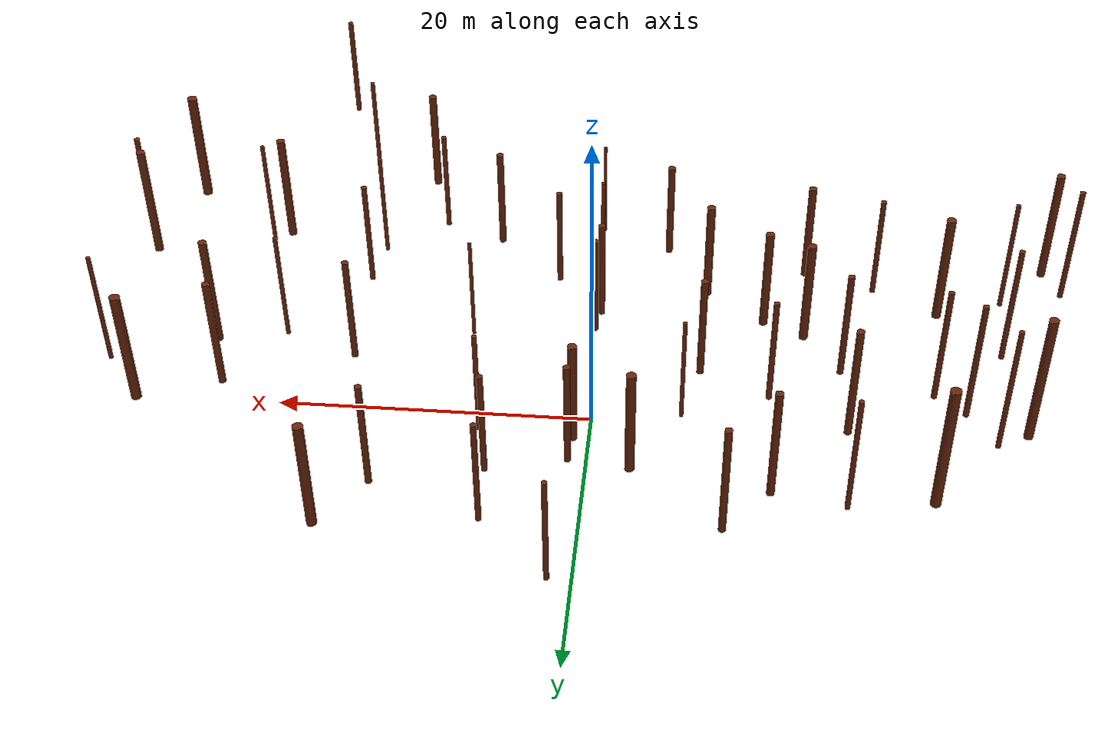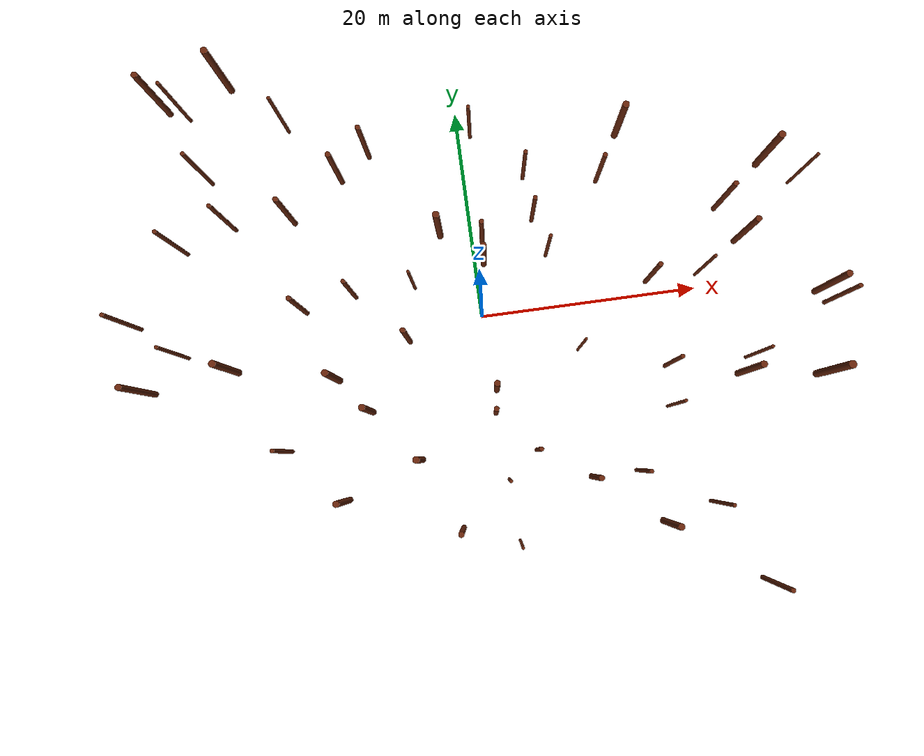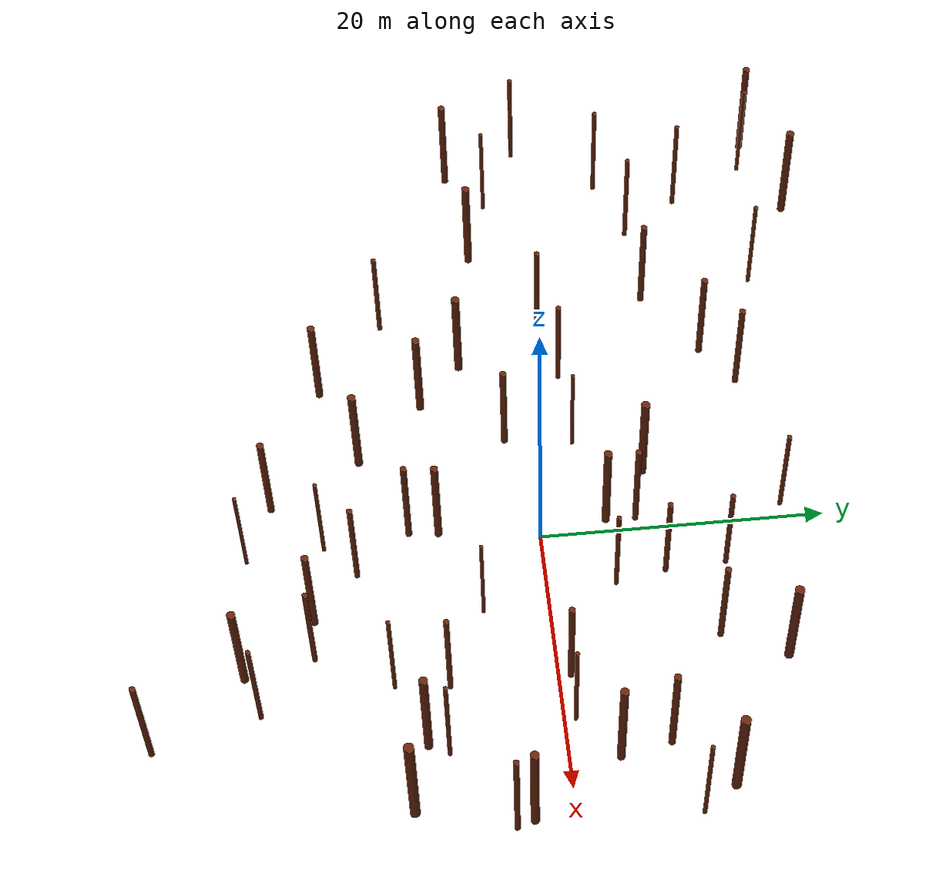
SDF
<sdf version="1.9">
 <world name="terrain_03">
  <plugin filename="gz-sim-physics-system" name="gz::sim::systems::Physics"/>
  <plugin filename="gz-sim-user-commands-system" name="gz::sim::systems::UserCommands"/>
  <plugin filename="gz-sim-scene-broadcaster-system" name="gz::sim::systems::SceneBroadcaster"/>
  <plugin filename="gz-sim-sensors-system" name="gz::sim::systems::Sensors">
   <render_engine>ogre2</render_engine>
  </plugin>
  <plugin filename="gz-sim-imu-system" name="gz::sim::systems::Imu"/>
  <plugin filename="gz-sim-navsat-system" name="gz::sim::systems::NavSat"/>
  <light type="directional" name="sun">
   <pose>0 -7000 7000 0 0 0</pose>
   <diffuse>0.9 0.88 0.82 1</diffuse>
   <specular>0 0 0 1</specular>
   <direction>0.0 0.6 -0.6</direction>
  </light>
  <scene>
   <ambient>0.45 0.48 0.55 1</ambient>
   <grid>false</grid>
   <origin_visual>false</origin_visual>
   <sky><time>10</time><sunrise>6</sunrise><sunset>20</sunset><clouds><speed>12</speed></clouds></sky>
  </scene>
  <physics name="1ms" type="ignored"><dart><collision_detector>bullet</collision_detector></dart></physics>
  <gravity>0 0 -9.8066</gravity>
  <spherical_coordinates>
   <surface_model>EARTH_WGS84</surface_model>
   <latitude_deg>46.50517716653482</latitude_deg>
   <longitude_deg>11.387928661058481</longitude_deg>
   <elevation>547.6000000000004</elevation>
  </spherical_coordinates>
  <model name="tree_0001">
   <static>true</static>
   <pose>0.6646 -20.2379 4.2562 0 0 1.249334</pose>
   <link name="trunk">
    <visual name="trunk_visual">
     <geometry><cylinder><radius>0.1248</radius><length>7.0000</length></cylinder></geometry>
     <material>
      <ambient>0.22 0.08 0.025 1</ambient>
      <diffuse>0.40 0.14 0.04 1</diffuse>
      <specular>0.05 0.05 0.05 1</specular>
     </material>
    </visual>
    <collision name="trunk_collision">
     <geometry><cylinder><radius>0.1248</radius><length>7.0000</length></cylinder></geometry>
    </collision>
   </link>
  </model>
  <model name="tree_0002">
   <static>true</static>
   <pose>12.6927 -19.9428 7.9440 0 0 0.040833</pose>
   <link name="trunk">
    <visual name="trunk_visual">
     <geometry><cylinder><radius>0.2657</radius><length>7.0000</length></cylinder></geometry>
     <material>
      <ambient>0.22 0.08 0.025 1</ambient>
      <diffuse>0.40 0.14 0.04 1</diffuse>
      <specular>0.05 0.05 0.05 1</specular>
     </material>
    </visual>
    <collision name="trunk_collision">
     <geometry><cylinder><radius>0.2657</radius><length>7.0000</length></cylinder></geometry>
    </collision>
   </link>
  </model>
  <model name="tree_0003">
   <static>true</static>
   <pose>19.2636 -25.0650 10.7334 0 0 0.976907</pose>
   <link name="trunk">
    <visual name="trunk_visual">
     <geometry><cylinder><radius>0.1812</radius><length>7.0000</length></cylinder></geometry>
     <material>
      <ambient>0.22 0.08 0.025 1</ambient>
      <diffuse>0.40 0.14 0.04 1</diffuse>
      <specular>0.05 0.05 0.05 1</specular>
     </material>
    </visual>
    <collision name="trunk_collision">
     <geometry><cylinder><radius>0.1812</radius><length>7.0000</length></cylinder></geometry>
    </collision>
   </link>
  </model>
  <model name="tree_0004">
   <static>true</static>
   <pose>-13.6316 -14.8130 5.0450 0 0 3.886274</pose>
   <link name="trunk">
    <visual name="trunk_visual">
     <geometry><cylinder><radius>0.2693</radius><length>7.0000</length></cylinder></geometry>
     <material>
      <ambient>0.22 0.08 0.025 1</ambient>
      <diffuse>0.40 0.14 0.04 1</diffuse>
      <specular>0.05 0.05 0.05 1</specular>
     </material>
    </visual>
    <collision name="trunk_collision">
     <geometry><cylinder><radius>0.2693</radius><length>7.0000</length></cylinder></geometry>
    </collision>
   </link>
  </model>
  <model name="tree_0005">
   <static>true</static>
   <pose>-4.1053 -18.5694 3.8730 0 0 0.287923</pose>
   <link name="trunk">
    <visual name="trunk_visual">
     <geometry><cylinder><radius>0.2468</radius><length>7.0000</length></cylinder></geometry>
     <material>
      <ambient>0.22 0.08 0.025 1</ambient>
      <diffuse>0.40 0.14 0.04 1</diffuse>
      <specular>0.05 0.05 0.05 1</specular>
     </material>
    </visual>
    <collision name="trunk_collision">
     <geometry><cylinder><radius>0.2468</radius><length>7.0000</length></cylinder></geometry>
    </collision>
   </link>
  </model>
  <model name="tree_0006">
   <static>true</static>
   <pose>0.4288 -14.9277 4.6783 0 0 1.462668</pose>
   <link name="trunk">
    <visual name="trunk_visual">
     <geometry><cylinder><radius>0.1344</radius><length>7.0000</length></cylinder></geometry>
     <material>
      <ambient>0.22 0.08 0.025 1</ambient>
      <diffuse>0.40 0.14 0.04 1</diffuse>
      <specular>0.05 0.05 0.05 1</specular>
     </material>
    </visual>
    <collision name="trunk_collision">
     <geometry><cylinder><radius>0.1344</radius><length>7.0000</length></cylinder></geometry>
    </collision>
   </link>
  </model>
  <model name="tree_0007">
   <static>true</static>
   <pose>7.4999 -15.6080 6.1229 0 0 2.292308</pose>
   <link name="trunk">
    <visual name="trunk_visual">
     <geometry><cylinder><radius>0.2344</radius><length>7.0000</length></cylinder></geometry>
     <material>
      <ambient>0.22 0.08 0.025 1</ambient>
      <diffuse>0.40 0.14 0.04 1</diffuse>
      <specular>0.05 0.05 0.05 1</specular>
     </material>
    </visual>
    <collision name="trunk_collision">
     <geometry><cylinder><radius>0.2344</radius><length>7.0000</length></cylinder></geometry>
    </collision>
   </link>
  </model>
  <model name="tree_0008">
   <static>true</static>
   <pose>11.2601 -15.5663 7.3431 0 0 5.885174</pose>
   <link name="trunk">
    <visual name="trunk_visual">
     <geometry><cylinder><radius>0.1681</radius><length>7.0000</length></cylinder></geometry>
     <material>
      <ambient>0.22 0.08 0.025 1</ambient>
      <diffuse>0.40 0.14 0.04 1</diffuse>
      <specular>0.05 0.05 0.05 1</specular>
     </material>
    </visual>
    <collision name="trunk_collision">
     <geometry><cylinder><radius>0.1681</radius><length>7.0000</length></cylinder></geometry>
    </collision>
   </link>
  </model>
  <model name="tree_0009">
   <static>true</static>
   <pose>16.5614 -18.7627 9.4497 0 0 4.581239</pose>
   <link name="trunk">
    <visual name="trunk_visual">
     <geometry><cylinder><radius>0.1508</radius><length>7.0000</length></cylinder></geometry>
     <material>
      <ambient>0.22 0.08 0.025 1</ambient>
      <diffuse>0.40 0.14 0.04 1</diffuse>
      <specular>0.05 0.05 0.05 1</specular>
     </material>
    </visual>
    <collision name="trunk_collision">
     <geometry><cylinder><radius>0.1508</radius><length>7.0000</length></cylinder></geometry>
    </collision>
   </link>
  </model>
  <model name="tree_0010">
   <static>true</static>
   <pose>-17.7329 -10.0585 7.2817 0 0 1.682266</pose>
   <link name="trunk">
    <visual name="trunk_visual">
     <geometry><cylinder><radius>0.1768</radius><length>7.0000</length></cylinder></geometry>
     <material>
      <ambient>0.22 0.08 0.025 1</ambient>
      <diffuse>0.40 0.14 0.04 1</diffuse>
      <specular>0.05 0.05 0.05 1</specular>
     </material>
    </visual>
    <collision name="trunk_collision">
     <geometry><cylinder><radius>0.1768</radius><length>7.0000</length></cylinder></geometry>
    </collision>
   </link>
  </model>
  <model name="tree_0011">
   <static>true</static>
   <pose>-10.6384 -7.5650 6.1093 0 0 1.977179</pose>
   <link name="trunk">
    <visual name="trunk_visual">
     <geometry><cylinder><radius>0.2777</radius><length>7.0000</length></cylinder></geometry>
     <material>
      <ambient>0.22 0.08 0.025 1</ambient>
      <diffuse>0.40 0.14 0.04 1</diffuse>
      <specular>0.05 0.05 0.05 1</specular>
     </material>
    </visual>
    <collision name="trunk_collision">
     <geometry><cylinder><radius>0.2777</radius><length>7.0000</length></cylinder></geometry>
    </collision>
   </link>
  </model>
  <model name="tree_0012">
   <static>true</static>
   <pose>-6.9236 -12.2282 4.8585 0 0 2.883051</pose>
   <link name="trunk">
    <visual name="trunk_visual">
     <geometry><cylinder><radius>0.2846</radius><length>7.0000</length></cylinder></geometry>
     <material>
      <ambient>0.22 0.08 0.025 1</ambient>
      <diffuse>0.40 0.14 0.04 1</diffuse>
      <specular>0.05 0.05 0.05 1</specular>
     </material>
    </visual>
    <collision name="trunk_collision">
     <geometry><cylinder><radius>0.2846</radius><length>7.0000</length></cylinder></geometry>
    </collision>
   </link>
  </model>
  <model name="tree_0013">
   <static>true</static>
   <pose>0.0595 -9.0664 5.1618 0 0 1.650854</pose>
   <link name="trunk">
    <visual name="trunk_visual">
     <geometry><cylinder><radius>0.2210</radius><length>7.0000</length></cylinder></geometry>
     <material>
      <ambient>0.22 0.08 0.025 1</ambient>
      <diffuse>0.40 0.14 0.04 1</diffuse>
      <specular>0.05 0.05 0.05 1</specular>
     </material>
    </visual>
    <collision name="trunk_collision">
     <geometry><cylinder><radius>0.2210</radius><length>7.0000</length></cylinder></geometry>
    </collision>
   </link>
  </model>
  <model name="tree_0014">
   <static>true</static>
   <pose>3.2000 -12.7300 5.1151 0 0 1.378033</pose>
   <link name="trunk">
    <visual name="trunk_visual">
     <geometry><cylinder><radius>0.1919</radius><length>7.0000</length></cylinder></geometry>
     <material>
      <ambient>0.22 0.08 0.025 1</ambient>
      <diffuse>0.40 0.14 0.04 1</diffuse>
      <specular>0.05 0.05 0.05 1</specular>
     </material>
    </visual>
    <collision name="trunk_collision">
     <geometry><cylinder><radius>0.1919</radius><length>7.0000</length></cylinder></geometry>
    </collision>
   </link>
  </model>
  <model name="tree_0015">
   <static>true</static>
   <pose>14.5870 -10.6019 8.4388 0 0 0.296041</pose>
   <link name="trunk">
    <visual name="trunk_visual">
     <geometry><cylinder><radius>0.1364</radius><length>7.0000</length></cylinder></geometry>
     <material>
      <ambient>0.22 0.08 0.025 1</ambient>
      <diffuse>0.40 0.14 0.04 1</diffuse>
      <specular>0.05 0.05 0.05 1</specular>
     </material>
    </visual>
    <collision name="trunk_collision">
     <geometry><cylinder><radius>0.1364</radius><length>7.0000</length></cylinder></geometry>
    </collision>
   </link>
  </model>
  <model name="tree_0016">
   <static>true</static>
   <pose>20.3695 -8.7783 10.6182 0 0 2.652509</pose>
   <link name="trunk">
    <visual name="trunk_visual">
     <geometry><cylinder><radius>0.2626</radius><length>7.0000</length></cylinder></geometry>
     <material>
      <ambient>0.22 0.08 0.025 1</ambient>
      <diffuse>0.40 0.14 0.04 1</diffuse>
      <specular>0.05 0.05 0.05 1</specular>
     </material>
    </visual>
    <collision name="trunk_collision">
     <geometry><cylinder><radius>0.2626</radius><length>7.0000</length></cylinder></geometry>
    </collision>
   </link>
  </model>
  <model name="tree_0017">
   <static>true</static>
   <pose>26.0068 -9.8029 12.8195 0 0 3.324523</pose>
   <link name="trunk">
    <visual name="trunk_visual">
     <geometry><cylinder><radius>0.2993</radius><length>7.0000</length></cylinder></geometry>
     <material>
      <ambient>0.22 0.08 0.025 1</ambient>
      <diffuse>0.40 0.14 0.04 1</diffuse>
      <specular>0.05 0.05 0.05 1</specular>
     </material>
    </visual>
    <collision name="trunk_collision">
     <geometry><cylinder><radius>0.2993</radius><length>7.0000</length></cylinder></geometry>
    </collision>
   </link>
  </model>
  <model name="tree_0018">
   <static>true</static>
   <pose>-26.8000 -4.3348 13.2286 0 0 3.373884</pose>
   <link name="trunk">
    <visual name="trunk_visual">
     <geometry><cylinder><radius>0.2427</radius><length>7.0000</length></cylinder></geometry>
     <material>
      <ambient>0.22 0.08 0.025 1</ambient>
      <diffuse>0.40 0.14 0.04 1</diffuse>
      <specular>0.05 0.05 0.05 1</specular>
     </material>
    </visual>
    <collision name="trunk_collision">
     <geometry><cylinder><radius>0.2427</radius><length>7.0000</length></cylinder></geometry>
    </collision>
   </link>
  </model>
  <model name="tree_0019">
   <static>true</static>
   <pose>-24.1021 -1.7184 12.7523 0 0 2.731711</pose>
   <link name="trunk">
    <visual name="trunk_visual">
     <geometry><cylinder><radius>0.1401</radius><length>7.0000</length></cylinder></geometry>
     <material>
      <ambient>0.22 0.08 0.025 1</ambient>
      <diffuse>0.40 0.14 0.04 1</diffuse>
      <specular>0.05 0.05 0.05 1</specular>
     </material>
    </visual>
    <collision name="trunk_collision">
     <geometry><cylinder><radius>0.1401</radius><length>7.0000</length></cylinder></geometry>
    </collision>
   </link>
  </model>
  <model name="tree_0020">
   <static>true</static>
   <pose>-20.8000 -3.1431 10.6480 0 0 1.654922</pose>
   <link name="trunk">
    <visual name="trunk_visual">
     <geometry><cylinder><radius>0.2777</radius><length>7.0000</length></cylinder></geometry>
     <material>
      <ambient>0.22 0.08 0.025 1</ambient>
      <diffuse>0.40 0.14 0.04 1</diffuse>
      <specular>0.05 0.05 0.05 1</specular>
     </material>
    </visual>
    <collision name="trunk_collision">
     <geometry><cylinder><radius>0.2777</radius><length>7.0000</length></cylinder></geometry>
    </collision>
   </link>
  </model>
  <model name="tree_0021">
   <static>true</static>
   <pose>-13.0548 -4.5696 7.3957 0 0 5.469629</pose>
   <link name="trunk">
    <visual name="trunk_visual">
     <geometry><cylinder><radius>0.2843</radius><length>7.0000</length></cylinder></geometry>
     <material>
      <ambient>0.22 0.08 0.025 1</ambient>
      <diffuse>0.40 0.14 0.04 1</diffuse>
      <specular>0.05 0.05 0.05 1</specular>
     </material>
    </visual>
    <collision name="trunk_collision">
     <geometry><cylinder><radius>0.2843</radius><length>7.0000</length></cylinder></geometry>
    </collision>
   </link>
  </model>
  <model name="tree_0022">
   <static>true</static>
   <pose>-6.6556 -1.8414 6.3460 0 0 0.960317</pose>
   <link name="trunk">
    <visual name="trunk_visual">
     <geometry><cylinder><radius>0.2296</radius><length>7.0000</length></cylinder></geometry>
     <material>
      <ambient>0.22 0.08 0.025 1</ambient>
      <diffuse>0.40 0.14 0.04 1</diffuse>
      <specular>0.05 0.05 0.05 1</specular>
     </material>
    </visual>
    <collision name="trunk_collision">
     <geometry><cylinder><radius>0.2296</radius><length>7.0000</length></cylinder></geometry>
    </collision>
   </link>
  </model>
  <model name="tree_0023">
   <static>true</static>
   <pose>0.3956 -7.0476 5.3214 0 0 3.332310</pose>
   <link name="trunk">
    <visual name="trunk_visual">
     <geometry><cylinder><radius>0.2602</radius><length>7.0000</length></cylinder></geometry>
     <material>
      <ambient>0.22 0.08 0.025 1</ambient>
      <diffuse>0.40 0.14 0.04 1</diffuse>
      <specular>0.05 0.05 0.05 1</specular>
     </material>
    </visual>
    <collision name="trunk_collision">
     <geometry><cylinder><radius>0.2602</radius><length>7.0000</length></cylinder></geometry>
    </collision>
   </link>
  </model>
  <model name="tree_0024">
   <static>true</static>
   <pose>7.9704 -4.5586 6.3872 0 0 5.837699</pose>
   <link name="trunk">
    <visual name="trunk_visual">
     <geometry><cylinder><radius>0.1235</radius><length>7.0000</length></cylinder></geometry>
     <material>
      <ambient>0.22 0.08 0.025 1</ambient>
      <diffuse>0.40 0.14 0.04 1</diffuse>
      <specular>0.05 0.05 0.05 1</specular>
     </material>
    </visual>
    <collision name="trunk_collision">
     <geometry><cylinder><radius>0.1235</radius><length>7.0000</length></cylinder></geometry>
    </collision>
   </link>
  </model>
  <model name="tree_0025">
   <static>true</static>
   <pose>14.9314 -7.1715 8.4628 0 0 0.363955</pose>
   <link name="trunk">
    <visual name="trunk_visual">
     <geometry><cylinder><radius>0.1754</radius><length>7.0000</length></cylinder></geometry>
     <material>
      <ambient>0.22 0.08 0.025 1</ambient>
      <diffuse>0.40 0.14 0.04 1</diffuse>
      <specular>0.05 0.05 0.05 1</specular>
     </material>
    </visual>
    <collision name="trunk_collision">
     <geometry><cylinder><radius>0.1754</radius><length>7.0000</length></cylinder></geometry>
    </collision>
   </link>
  </model>
  <model name="tree_0026">
   <static>true</static>
   <pose>21.2000 -7.5650 10.8774 0 0 3.053568</pose>
   <link name="trunk">
    <visual name="trunk_visual">
     <geometry><cylinder><radius>0.1354</radius><length>7.0000</length></cylinder></geometry>
     <material>
      <ambient>0.22 0.08 0.025 1</ambient>
      <diffuse>0.40 0.14 0.04 1</diffuse>
      <specular>0.05 0.05 0.05 1</specular>
     </material>
    </visual>
    <collision name="trunk_collision">
     <geometry><cylinder><radius>0.1354</radius><length>7.0000</length></cylinder></geometry>
    </collision>
   </link>
  </model>
  <model name="tree_0027">
   <static>true</static>
   <pose>27.2000 -3.1402 12.8371 0 0 0.806707</pose>
   <link name="trunk">
    <visual name="trunk_visual">
     <geometry><cylinder><radius>0.2579</radius><length>7.0000</length></cylinder></geometry>
     <material>
      <ambient>0.22 0.08 0.025 1</ambient>
      <diffuse>0.40 0.14 0.04 1</diffuse>
      <specular>0.05 0.05 0.05 1</specular>
     </material>
    </visual>
    <collision name="trunk_collision">
     <geometry><cylinder><radius>0.2579</radius><length>7.0000</length></cylinder></geometry>
    </collision>
   </link>
  </model>
  <model name="tree_0028">
   <static>true</static>
   <pose>27.7036 -4.1742 13.0949 0 0 5.481658</pose>
   <link name="trunk">
    <visual name="trunk_visual">
     <geometry><cylinder><radius>0.1677</radius><length>7.0000</length></cylinder></geometry>
     <material>
      <ambient>0.22 0.08 0.025 1</ambient>
      <diffuse>0.40 0.14 0.04 1</diffuse>
      <specular>0.05 0.05 0.05 1</specular>
     </material>
    </visual>
    <collision name="trunk_collision">
     <geometry><cylinder><radius>0.1677</radius><length>7.0000</length></cylinder></geometry>
    </collision>
   </link>
  </model>
  <model name="tree_0029">
   <static>true</static>
   <pose>-26.8000 0.6441 15.2683 0 0 1.958571</pose>
   <link name="trunk">
    <visual name="trunk_visual">
     <geometry><cylinder><radius>0.1562</radius><length>7.0000</length></cylinder></geometry>
     <material>
      <ambient>0.22 0.08 0.025 1</ambient>
      <diffuse>0.40 0.14 0.04 1</diffuse>
      <specular>0.05 0.05 0.05 1</specular>
     </material>
    </visual>
    <collision name="trunk_collision">
     <geometry><cylinder><radius>0.1562</radius><length>7.0000</length></cylinder></geometry>
    </collision>
   </link>
  </model>
  <model name="tree_0030">
   <static>true</static>
   <pose>-14.9038 1.3467 9.4547 0 0 3.252025</pose>
   <link name="trunk">
    <visual name="trunk_visual">
     <geometry><cylinder><radius>0.1989</radius><length>7.0000</length></cylinder></geometry>
     <material>
      <ambient>0.22 0.08 0.025 1</ambient>
      <diffuse>0.40 0.14 0.04 1</diffuse>
      <specular>0.05 0.05 0.05 1</specular>
     </material>
    </visual>
    <collision name="trunk_collision">
     <geometry><cylinder><radius>0.1989</radius><length>7.0000</length></cylinder></geometry>
    </collision>
   </link>
  </model>
  <model name="tree_0031">
   <static>true</static>
   <pose>-10.7660 2.4183 8.1055 0 0 3.696453</pose>
   <link name="trunk">
    <visual name="trunk_visual">
     <geometry><cylinder><radius>0.1809</radius><length>7.0000</length></cylinder></geometry>
     <material>
      <ambient>0.22 0.08 0.025 1</ambient>
      <diffuse>0.40 0.14 0.04 1</diffuse>
      <specular>0.05 0.05 0.05 1</specular>
     </material>
    </visual>
    <collision name="trunk_collision">
     <geometry><cylinder><radius>0.1809</radius><length>7.0000</length></cylinder></geometry>
    </collision>
   </link>
  </model>
  <model name="tree_0032">
   <static>true</static>
   <pose>-5.6242 2.8346 6.7025 0 0 3.965337</pose>
   <link name="trunk">
    <visual name="trunk_visual">
     <geometry><cylinder><radius>0.1328</radius><length>7.0000</length></cylinder></geometry>
     <material>
      <ambient>0.22 0.08 0.025 1</ambient>
      <diffuse>0.40 0.14 0.04 1</diffuse>
      <specular>0.05 0.05 0.05 1</specular>
     </material>
    </visual>
    <collision name="trunk_collision">
     <geometry><cylinder><radius>0.1328</radius><length>7.0000</length></cylinder></geometry>
    </collision>
   </link>
  </model>
  <model name="tree_0033">
   <static>true</static>
   <pose>0.7730 4.4350 5.8388 0 0 0.445210</pose>
   <link name="trunk">
    <visual name="trunk_visual">
     <geometry><cylinder><radius>0.2747</radius><length>7.0000</length></cylinder></geometry>
     <material>
      <ambient>0.22 0.08 0.025 1</ambient>
      <diffuse>0.40 0.14 0.04 1</diffuse>
      <specular>0.05 0.05 0.05 1</specular>
     </material>
    </visual>
    <collision name="trunk_collision">
     <geometry><cylinder><radius>0.2747</radius><length>7.0000</length></cylinder></geometry>
    </collision>
   </link>
  </model>
  <model name="tree_0034">
   <static>true</static>
   <pose>6.4239 4.4005 6.1579 0 0 0.831340</pose>
   <link name="trunk">
    <visual name="trunk_visual">
     <geometry><cylinder><radius>0.1586</radius><length>7.0000</length></cylinder></geometry>
     <material>
      <ambient>0.22 0.08 0.025 1</ambient>
      <diffuse>0.40 0.14 0.04 1</diffuse>
      <specular>0.05 0.05 0.05 1</specular>
     </material>
    </visual>
    <collision name="trunk_collision">
     <geometry><cylinder><radius>0.1586</radius><length>7.0000</length></cylinder></geometry>
    </collision>
   </link>
  </model>
  <model name="tree_0035">
   <static>true</static>
   <pose>14.5915 0.4093 8.0573 0 0 4.929909</pose>
   <link name="trunk">
    <visual name="trunk_visual">
     <geometry><cylinder><radius>0.2051</radius><length>7.0000</length></cylinder></geometry>
     <material>
      <ambient>0.22 0.08 0.025 1</ambient>
      <diffuse>0.40 0.14 0.04 1</diffuse>
      <specular>0.05 0.05 0.05 1</specular>
     </material>
    </visual>
    <collision name="trunk_collision">
     <geometry><cylinder><radius>0.2051</radius><length>7.0000</length></cylinder></geometry>
    </collision>
   </link>
  </model>
  <model name="tree_0036">
   <static>true</static>
   <pose>18.6595 0.2190 9.4162 0 0 2.708374</pose>
   <link name="trunk">
    <visual name="trunk_visual">
     <geometry><cylinder><radius>0.1374</radius><length>7.0000</length></cylinder></geometry>
     <material>
      <ambient>0.22 0.08 0.025 1</ambient>
      <diffuse>0.40 0.14 0.04 1</diffuse>
      <specular>0.05 0.05 0.05 1</specular>
     </material>
    </visual>
    <collision name="trunk_collision">
     <geometry><cylinder><radius>0.1374</radius><length>7.0000</length></cylinder></geometry>
    </collision>
   </link>
  </model>
  <model name="tree_0037">
   <static>true</static>
   <pose>22.2100 2.4714 10.4601 0 0 4.230874</pose>
   <link name="trunk">
    <visual name="trunk_visual">
     <geometry><cylinder><radius>0.2512</radius><length>7.0000</length></cylinder></geometry>
     <material>
      <ambient>0.22 0.08 0.025 1</ambient>
      <diffuse>0.40 0.14 0.04 1</diffuse>
      <specular>0.05 0.05 0.05 1</specular>
     </material>
    </visual>
    <collision name="trunk_collision">
     <geometry><cylinder><radius>0.2512</radius><length>7.0000</length></cylinder></geometry>
    </collision>
   </link>
  </model>
  <model name="tree_0038">
   <static>true</static>
   <pose>-22.8238 6.2799 15.0368 0 0 2.818722</pose>
   <link name="trunk">
    <visual name="trunk_visual">
     <geometry><cylinder><radius>0.1542</radius><length>7.0000</length></cylinder></geometry>
     <material>
      <ambient>0.22 0.08 0.025 1</ambient>
      <diffuse>0.40 0.14 0.04 1</diffuse>
      <specular>0.05 0.05 0.05 1</specular>
     </material>
    </visual>
    <collision name="trunk_collision">
     <geometry><cylinder><radius>0.1542</radius><length>7.0000</length></cylinder></geometry>
    </collision>
   </link>
  </model>
  <model name="tree_0039">
   <static>true</static>
   <pose>-19.2253 8.1968 13.5909 0 0 5.801049</pose>
   <link name="trunk">
    <visual name="trunk_visual">
     <geometry><cylinder><radius>0.1650</radius><length>7.0000</length></cylinder></geometry>
     <material>
      <ambient>0.22 0.08 0.025 1</ambient>
      <diffuse>0.40 0.14 0.04 1</diffuse>
      <specular>0.05 0.05 0.05 1</specular>
     </material>
    </visual>
    <collision name="trunk_collision">
     <geometry><cylinder><radius>0.1650</radius><length>7.0000</length></cylinder></geometry>
    </collision>
   </link>
  </model>
  <model name="tree_0040">
   <static>true</static>
   <pose>-14.8000 8.8256 11.2740 0 0 0.317856</pose>
   <link name="trunk">
    <visual name="trunk_visual">
     <geometry><cylinder><radius>0.2191</radius><length>7.0000</length></cylinder></geometry>
     <material>
      <ambient>0.22 0.08 0.025 1</ambient>
      <diffuse>0.40 0.14 0.04 1</diffuse>
      <specular>0.05 0.05 0.05 1</specular>
     </material>
    </visual>
    <collision name="trunk_collision">
     <geometry><cylinder><radius>0.2191</radius><length>7.0000</length></cylinder></geometry>
    </collision>
   </link>
  </model>
  <model name="tree_0041">
   <static>true</static>
   <pose>-2.8000 7.4179 6.3682 0 0 5.820535</pose>
   <link name="trunk">
    <visual name="trunk_visual">
     <geometry><cylinder><radius>0.2944</radius><length>7.0000</length></cylinder></geometry>
     <material>
      <ambient>0.22 0.08 0.025 1</ambient>
      <diffuse>0.40 0.14 0.04 1</diffuse>
      <specular>0.05 0.05 0.05 1</specular>
     </material>
    </visual>
    <collision name="trunk_collision">
     <geometry><cylinder><radius>0.2944</radius><length>7.0000</length></cylinder></geometry>
    </collision>
   </link>
  </model>
  <model name="tree_0042">
   <static>true</static>
   <pose>0.9010 6.4533 5.9075 0 0 1.343014</pose>
   <link name="trunk">
    <visual name="trunk_visual">
     <geometry><cylinder><radius>0.2074</radius><length>7.0000</length></cylinder></geometry>
     <material>
      <ambient>0.22 0.08 0.025 1</ambient>
      <diffuse>0.40 0.14 0.04 1</diffuse>
      <specular>0.05 0.05 0.05 1</specular>
     </material>
    </visual>
    <collision name="trunk_collision">
     <geometry><cylinder><radius>0.2074</radius><length>7.0000</length></cylinder></geometry>
    </collision>
   </link>
  </model>
  <model name="tree_0043">
   <static>true</static>
   <pose>5.6349 7.8400 6.0582 0 0 6.190878</pose>
   <link name="trunk">
    <visual name="trunk_visual">
     <geometry><cylinder><radius>0.1882</radius><length>7.0000</length></cylinder></geometry>
     <material>
      <ambient>0.22 0.08 0.025 1</ambient>
      <diffuse>0.40 0.14 0.04 1</diffuse>
      <specular>0.05 0.05 0.05 1</specular>
     </material>
    </visual>
    <collision name="trunk_collision">
     <geometry><cylinder><radius>0.1882</radius><length>7.0000</length></cylinder></geometry>
    </collision>
   </link>
  </model>
  <model name="tree_0044">
   <static>true</static>
   <pose>11.8660 10.4350 7.0342 0 0 2.657834</pose>
   <link name="trunk">
    <visual name="trunk_visual">
     <geometry><cylinder><radius>0.2019</radius><length>7.0000</length></cylinder></geometry>
     <material>
      <ambient>0.22 0.08 0.025 1</ambient>
      <diffuse>0.40 0.14 0.04 1</diffuse>
      <specular>0.05 0.05 0.05 1</specular>
     </material>
    </visual>
    <collision name="trunk_collision">
     <geometry><cylinder><radius>0.2019</radius><length>7.0000</length></cylinder></geometry>
    </collision>
   </link>
  </model>
  <model name="tree_0045">
   <static>true</static>
   <pose>21.2000 5.6955 9.9076 0 0 4.513892</pose>
   <link name="trunk">
    <visual name="trunk_visual">
     <geometry><cylinder><radius>0.2200</radius><length>7.0000</length></cylinder></geometry>
     <material>
      <ambient>0.22 0.08 0.025 1</ambient>
      <diffuse>0.40 0.14 0.04 1</diffuse>
      <specular>0.05 0.05 0.05 1</specular>
     </material>
    </visual>
    <collision name="trunk_collision">
     <geometry><cylinder><radius>0.2200</radius><length>7.0000</length></cylinder></geometry>
    </collision>
   </link>
  </model>
  <model name="tree_0046">
   <static>true</static>
   <pose>25.1450 8.8217 11.0468 0 0 3.639097</pose>
   <link name="trunk">
    <visual name="trunk_visual">
     <geometry><cylinder><radius>0.2944</radius><length>7.0000</length></cylinder></geometry>
     <material>
      <ambient>0.22 0.08 0.025 1</ambient>
      <diffuse>0.40 0.14 0.04 1</diffuse>
      <specular>0.05 0.05 0.05 1</specular>
     </material>
    </visual>
    <collision name="trunk_collision">
     <geometry><cylinder><radius>0.2944</radius><length>7.0000</length></cylinder></geometry>
    </collision>
   </link>
  </model>
  <model name="tree_0047">
   <static>true</static>
   <pose>27.2000 6.5649 11.9474 0 0 3.670496</pose>
   <link name="trunk">
    <visual name="trunk_visual">
     <geometry><cylinder><radius>0.1303</radius><length>7.0000</length></cylinder></geometry>
     <material>
      <ambient>0.22 0.08 0.025 1</ambient>
      <diffuse>0.40 0.14 0.04 1</diffuse>
      <specular>0.05 0.05 0.05 1</specular>
     </material>
    </visual>
    <collision name="trunk_collision">
     <geometry><cylinder><radius>0.1303</radius><length>7.0000</length></cylinder></geometry>
    </collision>
   </link>
  </model>
  <model name="tree_0048">
   <static>true</static>
   <pose>-21.0037 16.4350 17.4926 0 0 1.167573</pose>
   <link name="trunk">
    <visual name="trunk_visual">
     <geometry><cylinder><radius>0.1344</radius><length>7.0000</length></cylinder></geometry>
     <material>
      <ambient>0.22 0.08 0.025 1</ambient>
      <diffuse>0.40 0.14 0.04 1</diffuse>
      <specular>0.05 0.05 0.05 1</specular>
     </material>
    </visual>
    <collision name="trunk_collision">
     <geometry><cylinder><radius>0.1344</radius><length>7.0000</length></cylinder></geometry>
    </collision>
   </link>
  </model>
  <model name="tree_0049">
   <static>true</static>
   <pose>-20.2804 11.7485 15.4149 0 0 0.753270</pose>
   <link name="trunk">
    <visual name="trunk_visual">
     <geometry><cylinder><radius>0.1623</radius><length>7.0000</length></cylinder></geometry>
     <material>
      <ambient>0.22 0.08 0.025 1</ambient>
      <diffuse>0.40 0.14 0.04 1</diffuse>
      <specular>0.05 0.05 0.05 1</specular>
     </material>
    </visual>
    <collision name="trunk_collision">
     <geometry><cylinder><radius>0.1623</radius><length>7.0000</length></cylinder></geometry>
    </collision>
   </link>
  </model>
  <model name="tree_0050">
   <static>true</static>
   <pose>-10.6396 12.4786 9.8313 0 0 3.891689</pose>
   <link name="trunk">
    <visual name="trunk_visual">
     <geometry><cylinder><radius>0.2270</radius><length>7.0000</length></cylinder></geometry>
     <material>
      <ambient>0.22 0.08 0.025 1</ambient>
      <diffuse>0.40 0.14 0.04 1</diffuse>
      <specular>0.05 0.05 0.05 1</specular>
     </material>
    </visual>
    <collision name="trunk_collision">
     <geometry><cylinder><radius>0.2270</radius><length>7.0000</length></cylinder></geometry>
    </collision>
   </link>
  </model>
  <model name="tree_0051">
   <static>true</static>
   <pose>-8.1139 14.7218 9.1224 0 0 5.872933</pose>
   <link name="trunk">
    <visual name="trunk_visual">
     <geometry><cylinder><radius>0.2141</radius><length>7.0000</length></cylinder></geometry>
     <material>
      <ambient>0.22 0.08 0.025 1</ambient>
      <diffuse>0.40 0.14 0.04 1</diffuse>
      <specular>0.05 0.05 0.05 1</specular>
     </material>
    </visual>
    <collision name="trunk_collision">
     <geometry><cylinder><radius>0.2141</radius><length>7.0000</length></cylinder></geometry>
    </collision>
   </link>
  </model>
  <model name="tree_0052">
   <static>true</static>
   <pose>1.0998 16.4350 6.4297 0 0 2.486796</pose>
   <link name="trunk">
    <visual name="trunk_visual">
     <geometry><cylinder><radius>0.1630</radius><length>7.0000</length></cylinder></geometry>
     <material>
      <ambient>0.22 0.08 0.025 1</ambient>
      <diffuse>0.40 0.14 0.04 1</diffuse>
      <specular>0.05 0.05 0.05 1</specular>
     </material>
    </visual>
    <collision name="trunk_collision">
     <geometry><cylinder><radius>0.1630</radius><length>7.0000</length></cylinder></geometry>
    </collision>
   </link>
  </model>
  <model name="tree_0053">
   <static>true</static>
   <pose>5.4020 11.9462 6.0894 0 0 4.724104</pose>
   <link name="trunk">
    <visual name="trunk_visual">
     <geometry><cylinder><radius>0.1769</radius><length>7.0000</length></cylinder></geometry>
     <material>
      <ambient>0.22 0.08 0.025 1</ambient>
      <diffuse>0.40 0.14 0.04 1</diffuse>
      <specular>0.05 0.05 0.05 1</specular>
     </material>
    </visual>
    <collision name="trunk_collision">
     <geometry><cylinder><radius>0.1769</radius><length>7.0000</length></cylinder></geometry>
    </collision>
   </link>
  </model>
  <model name="tree_0054">
   <static>true</static>
   <pose>14.1884 14.4098 7.5005 0 0 6.258659</pose>
   <link name="trunk">
    <visual name="trunk_visual">
     <geometry><cylinder><radius>0.2997</radius><length>7.0000</length></cylinder></geometry>
     <material>
      <ambient>0.22 0.08 0.025 1</ambient>
      <diffuse>0.40 0.14 0.04 1</diffuse>
      <specular>0.05 0.05 0.05 1</specular>
     </material>
    </visual>
    <collision name="trunk_collision">
     <geometry><cylinder><radius>0.2997</radius><length>7.0000</length></cylinder></geometry>
    </collision>
   </link>
  </model>
  <model name="tree_0055">
   <static>true</static>
   <pose>-22.2336 16.7381 18.4765 0 0 6.202968</pose>
   <link name="trunk">
    <visual name="trunk_visual">
     <geometry><cylinder><radius>0.2301</radius><length>7.0000</length></cylinder></geometry>
     <material>
      <ambient>0.22 0.08 0.025 1</ambient>
      <diffuse>0.40 0.14 0.04 1</diffuse>
      <specular>0.05 0.05 0.05 1</specular>
     </material>
    </visual>
    <collision name="trunk_collision">
     <geometry><cylinder><radius>0.2301</radius><length>7.0000</length></cylinder></geometry>
    </collision>
   </link>
  </model>
  <model name="tree_0056">
   <static>true</static>
   <pose>-17.9422 19.2286 16.1226 0 0 1.881052</pose>
   <link name="trunk">
    <visual name="trunk_visual">
     <geometry><cylinder><radius>0.2671</radius><length>7.0000</length></cylinder></geometry>
     <material>
      <ambient>0.22 0.08 0.025 1</ambient>
      <diffuse>0.40 0.14 0.04 1</diffuse>
      <specular>0.05 0.05 0.05 1</specular>
     </material>
    </visual>
    <collision name="trunk_collision">
     <geometry><cylinder><radius>0.2671</radius><length>7.0000</length></cylinder></geometry>
    </collision>
   </link>
  </model>
  <model name="tree_0057">
   <static>true</static>
   <pose>-14.2485 16.4350 12.8750 0 0 0.725260</pose>
   <link name="trunk">
    <visual name="trunk_visual">
     <geometry><cylinder><radius>0.1442</radius><length>7.0000</length></cylinder></geometry>
     <material>
      <ambient>0.22 0.08 0.025 1</ambient>
      <diffuse>0.40 0.14 0.04 1</diffuse>
      <specular>0.05 0.05 0.05 1</specular>
     </material>
    </visual>
    <collision name="trunk_collision">
     <geometry><cylinder><radius>0.1442</radius><length>7.0000</length></cylinder></geometry>
    </collision>
   </link>
  </model>
 </world>
</sdf>
